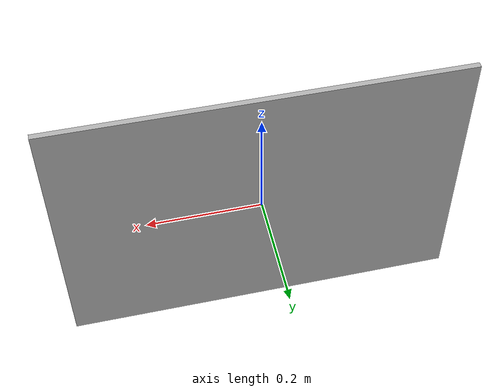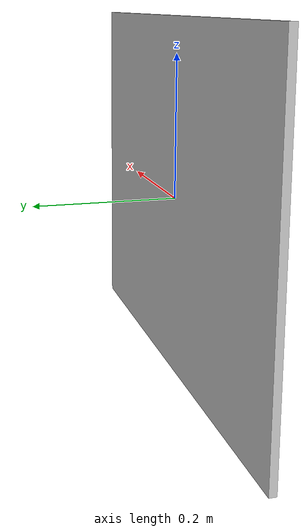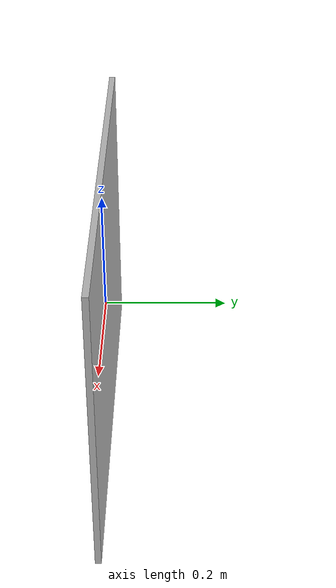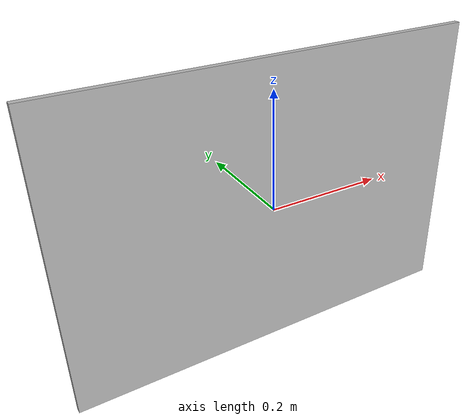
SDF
<?xml version="1.0"?>
<sdf version="1.6">
  <model name="space1">
    <static>true</static>
    <link name="robot_link">
      <collision name="body_collision">
        <geometry>
          <box>
            <size>0.5 0.01 0.5</size>
          </box>
        </geometry>
      </collision>

      <visual name="body_visual">
        <geometry>
          <box>
            <size>0.707 0.01 0.5</size>
          </box>
        </geometry>

        <material>
          <script>
           <uri>model://photoframe1/materials/scripts/</uri>
           <uri>model://photoframe1/materials/textures/</uri>
           <name>RepeatedTexture1</name>
          </script>
        </material>
      </visual>

    </link>
  </model>
</sdf>
